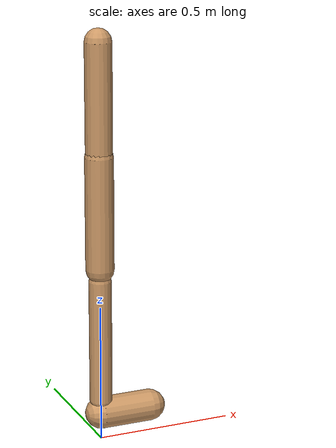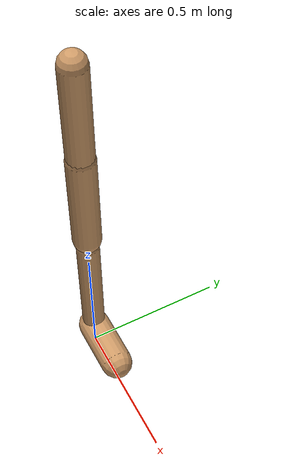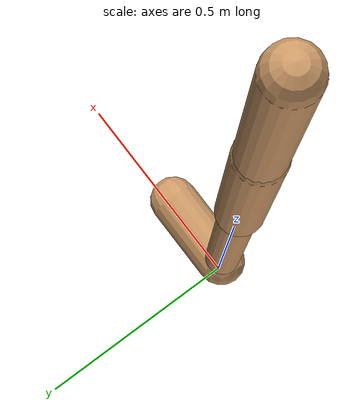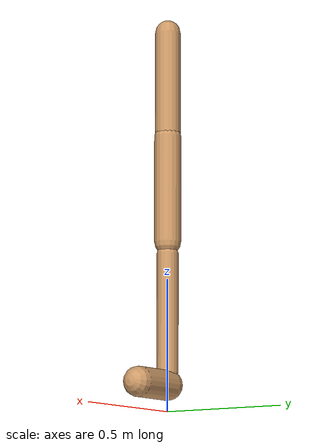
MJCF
<mujoco model="walker2d">
  <compiler angle="degree" coordinate="global" inertiafromgeom="true" />
  <default>
    <joint armature="0.01" damping=".1" limited="true" />
    <geom conaffinity="0" condim="3" contype="1" density="1000" friction="0.8 .1 .1" rgba="0.8 0.6 .4 1" />
  </default>
  <option integrator="RK4" timestep="0.002" />
  <worldbody>

    <body name="torso" pos="0 0 -0.09296377355741418">
      <joint armature="0" axis="1 0 0" damping="0" limited="false" name="ignorex" pos="0 0 0" stiffness="0" type="slide" />
      <joint armature="0" axis="0 0 1" damping="0" limited="false" name="ignorez" pos="0 0 0" ref="1.25" stiffness="0" type="slide" />
      <joint armature="0" axis="0 1 0" damping="0" limited="false" name="ignorey" pos="0 0 0" stiffness="0" type="hinge" />
      <geom fromto="0 0 1.45 0 0 1.05" name="torso_geom" size="0.04796076097375944" type="capsule" />
      <body name="thigh">
        <joint axis="0 -1 0" name="thigh_joint" pos="0 0 1.05" range="-150 0" type="hinge" />
        <geom fromto="0.0 0.0 1.05 0.0 0.0 0.6440354716850909" name="thigh_geom" size="0.050849760721194605" type="capsule" />
        <body name="leg" pos="0.0 0.0 0.04403547168509092">
          <joint axis="0 -1 0" name="leg_joint" pos="0 0 0.6" range="-150 0" type="hinge" />
          <geom fromto="0.0 0.0 0.6 0.0 0.0 0.14892830187232325" name="leg_geom" size="0.04067980857695568" type="capsule" />
          <body name="foot" pos="0.0 0.0 0.04892830187232325">
            <joint axis="0 -1 0" name="foot_joint" pos="0 0 0.1" range="-45 45" type="hinge" />
            <geom fromto="0.0 0.0 0.1 0.18778760689676607 0.0 0.1" name="foot_geom" size="0.057622018937945274" type="capsule" />
          </body>
        </body>
      </body>

      <body name="thigh_left">
        <joint axis="0 -1 0" name="thigh_left_joint" pos="0 0 1.05" range="-150 0" type="hinge" />
        <geom fromto="0.0 0.0 1.05 0.0 0.0 0.6440354716850909" name="thigh_left_geom" rgba=".7 .3 .6 1" size="0.050849760721194605" type="capsule" />
        <body name="leg_left" pos="0.0 0.0 0.04403547168509092">
          <joint axis="0 -1 0" name="leg_left_joint" pos="0 0 0.6" range="-150 0" type="hinge" />
          <geom fromto="0.0 0.0 0.6 0.0 0.0 0.14892830187232325" name="leg_left_geom" rgba=".7 .3 .6 1" size="0.04067980857695568" type="capsule" />
          <body name="foot_left" pos="0.0 0.0 0.04892830187232325">
            <joint axis="0 -1 0" name="foot_left_joint" pos="0 0 0.1" range="-45 45" type="hinge" />
            <geom fromto="0.0 0.0 0.1 0.18778760689676607 0.0 0.1" name="foot_left_geom" rgba=".7 .3 .6 1" size="0.057622018937945274" type="capsule" />
          </body>
        </body>
      </body>
    </body>
  </worldbody>
  <actuator>

    <motor ctrllimited="true" ctrlrange="-1.0 1.0" gear="100" joint="thigh_joint" />
    <motor ctrllimited="true" ctrlrange="-1.0 1.0" gear="100" joint="leg_joint" />
    <motor ctrllimited="true" ctrlrange="-1.0 1.0" gear="100" joint="foot_joint" />
    <motor ctrllimited="true" ctrlrange="-1.0 1.0" gear="100" joint="thigh_left_joint" />
    <motor ctrllimited="true" ctrlrange="-1.0 1.0" gear="100" joint="leg_left_joint" />
    <motor ctrllimited="true" ctrlrange="-1.0 1.0" gear="100" joint="foot_left_joint" />

  </actuator>
</mujoco>
